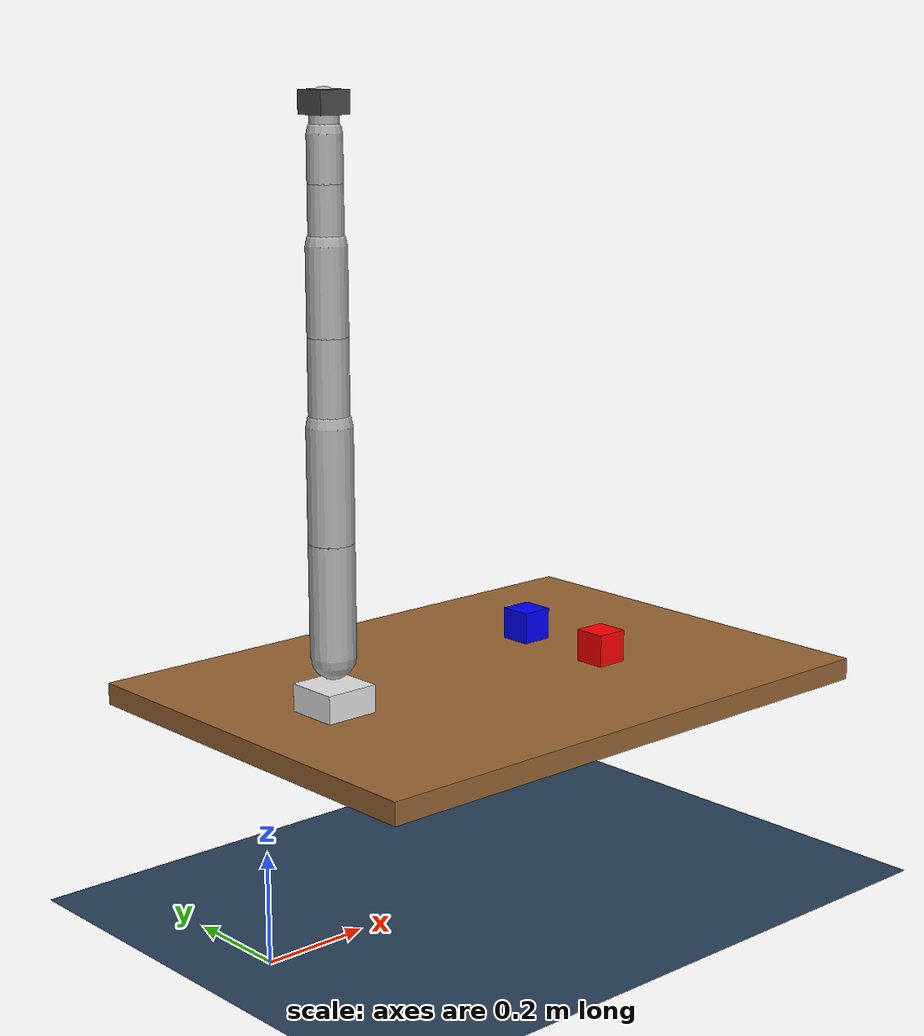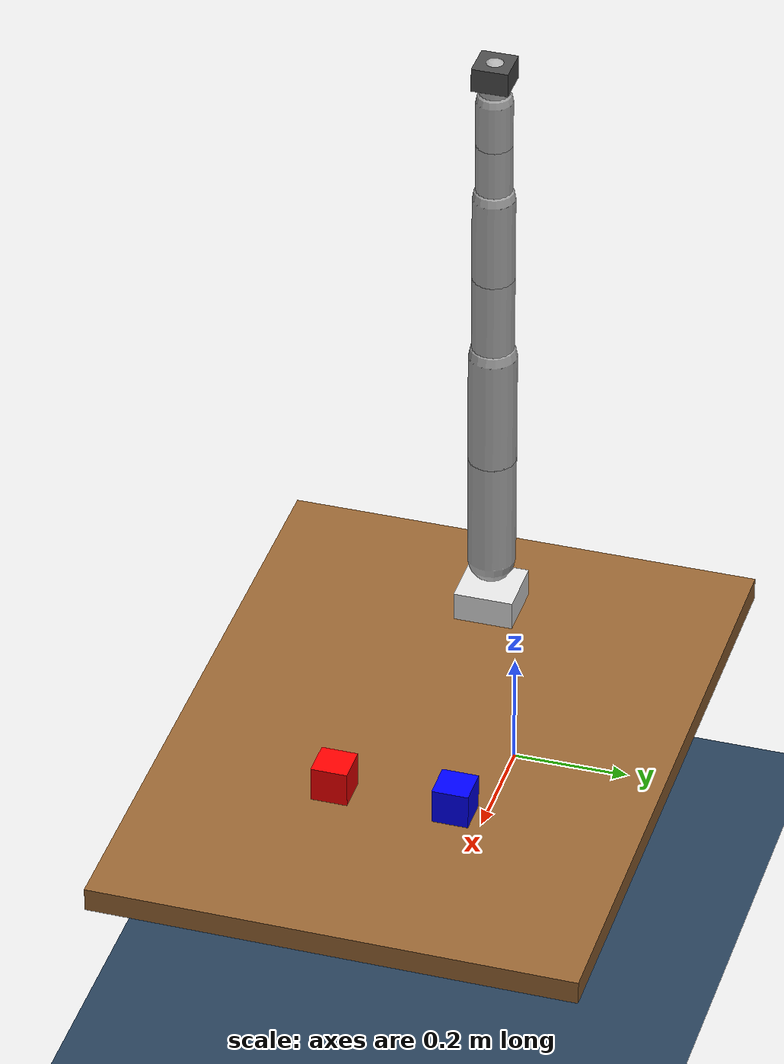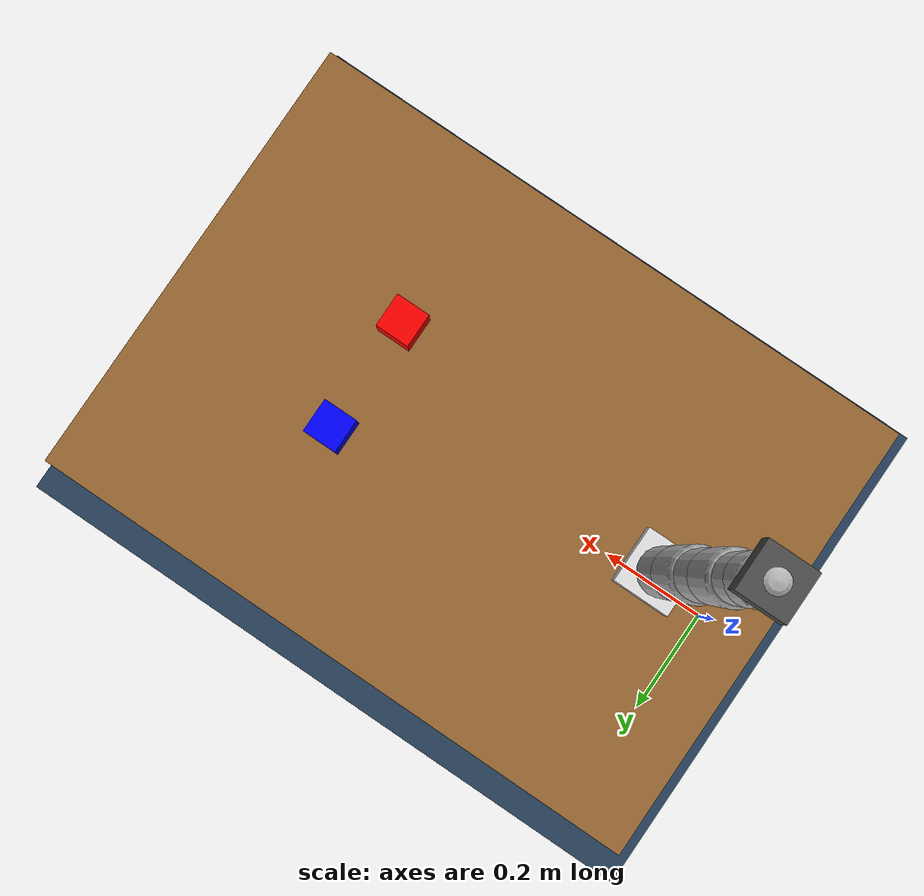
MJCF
<mujoco model="franka_minimal">
  <!-- Simplified Franka scene with table and cubes -->

  <compiler angle="radian" autolimits="true"/>
  <option gravity="0 0 -9.81" integrator="implicitfast"/>

  <asset>
    <texture type="skybox" builtin="gradient" rgb1="0.3 0.5 0.7" rgb2="0 0 0" width="512" height="512"/>
    <texture type="2d" name="groundplane" builtin="checker" mark="edge" rgb1="0.2 0.3 0.4"
             rgb2="0.1 0.2 0.3" markrgb="0.8 0.8 0.8" width="300" height="300"/>
    <material name="groundplane" texture="groundplane" texuniform="true" texrepeat="5 5"/>
  </asset>

  <worldbody>
    <light pos="0 0 1.5" dir="0 0 -1" directional="true"/>
    <geom name="floor" size="0 0 0.05" type="plane" material="groundplane"/>

    <!-- Camera -->
    <camera name="overhead" pos="1.1 0 0.9" euler="0 45 0" fovy="100"/>

    <!-- Table -->
    <body name="table" pos="0.5 0 0.4" euler="0 0 1.5708">
      <geom type="box" size="0.4 0.55 0.02" rgba="0.6 0.4 0.2 1"/>
    </body>

    <!-- Red cube -->
    <body name="cube_pick" pos="0.7 -0.1 0.45">
      <freejoint/>
      <geom type="box" size="0.03 0.03 0.03" rgba="1 0 0 1" mass="0.1"/>
    </body>

    <!-- Blue cube -->
    <body name="cube_A" pos="0.7 0.1 0.45">
      <freejoint/>
      <geom type="box" size="0.03 0.03 0.03" rgba="0 0 1 1" mass="0.1"/>
    </body>

    <!-- Franka robot (simplified 7-DOF arm) -->
    <body name="robot_base" pos="0.15 0 0.42">
      <geom type="box" size="0.05 0.05 0.05" rgba="0.9 0.9 0.9 1"/>

      <body name="link1" pos="0 0 0.1">
        <joint name="joint1" type="hinge" axis="0 0 1" range="-2.8973 2.8973" damping="1"/>
        <geom type="capsule" size="0.04" fromto="0 0 0 0 0 0.2" rgba="0.7 0.7 0.7 1"/>

        <body name="link2" pos="0 0 0.2">
          <joint name="joint2" type="hinge" axis="0 1 0" range="-1.7628 1.7628" damping="1"/>
          <geom type="capsule" size="0.04" fromto="0 0 0 0 0 0.2" rgba="0.7 0.7 0.7 1"/>

          <body name="link3" pos="0 0 0.2">
            <joint name="joint3" type="hinge" axis="0 0 1" range="-2.8973 2.8973" damping="1"/>
            <geom type="capsule" size="0.035" fromto="0 0 0 0 0 0.15" rgba="0.7 0.7 0.7 1"/>

            <body name="link4" pos="0 0 0.15">
              <joint name="joint4" type="hinge" axis="0 1 0" range="-3.0718 -0.0698" damping="1"/>
              <geom type="capsule" size="0.035" fromto="0 0 0 0 0 0.15" rgba="0.7 0.7 0.7 1"/>

              <body name="link5" pos="0 0 0.15">
                <joint name="joint5" type="hinge" axis="0 0 1" range="-2.8973 2.8973" damping="1"/>
                <geom type="capsule" size="0.03" fromto="0 0 0 0 0 0.1" rgba="0.7 0.7 0.7 1"/>

                <body name="link6" pos="0 0 0.1">
                  <joint name="joint6" type="hinge" axis="0 1 0" range="-0.0175 3.7525" damping="1"/>
                  <geom type="capsule" size="0.03" fromto="0 0 0 0 0 0.08" rgba="0.7 0.7 0.7 1"/>

                  <body name="link7" pos="0 0 0.08">
                    <joint name="joint7" type="hinge" axis="0 0 1" range="-2.8973 2.8973" damping="1"/>
                    <geom type="capsule" size="0.025" fromto="0 0 0 0 0 0.05" rgba="0.7 0.7 0.7 1"/>

                    <!-- End-effector (hand) -->
                    <body name="hand" pos="0 0 0.05">
                      <geom type="box" size="0.03 0.03 0.02" rgba="0.3 0.3 0.3 1"/>
                    </body>
                  </body>
                </body>
              </body>
            </body>
          </body>
        </body>
      </body>
    </body>
  </worldbody>

  <actuator>
    <!-- Position control for 7 arm joints -->
    <position name="act1" joint="joint1" kp="4500"/>
    <position name="act2" joint="joint2" kp="4500"/>
    <position name="act3" joint="joint3" kp="3500"/>
    <position name="act4" joint="joint4" kp="3500"/>
    <position name="act5" joint="joint5" kp="2000"/>
    <position name="act6" joint="joint6" kp="2000"/>
    <position name="act7" joint="joint7" kp="2000"/>

    <!-- Gripper control (simplified - just a single actuator) -->
    <general name="gripper" joint="joint7" ctrlrange="0 255" gainprm="10 0 0"/>
  </actuator>

  <keyframe>
    <key name="home" qpos="0 0 0 -1.57079 0 1.57079 -0.7853 0.04 0.04"
         ctrl="0 0 0 -1.57079 0 1.57079 -0.7853 255"/>
  </keyframe>
</mujoco>
